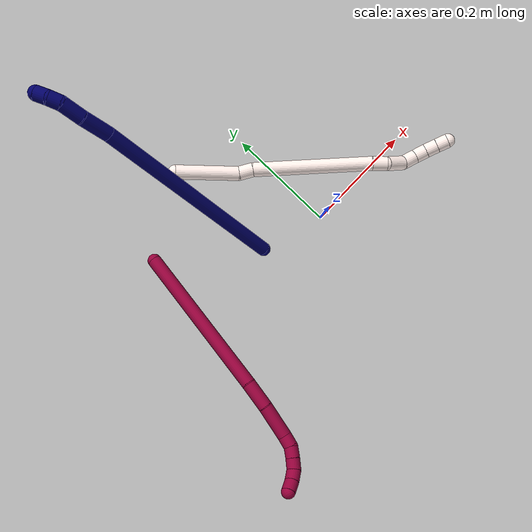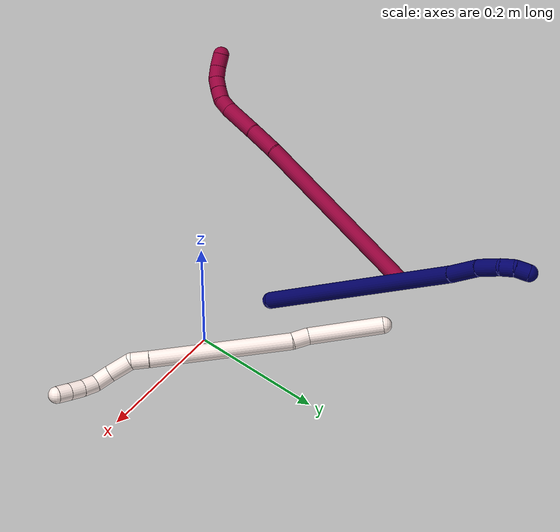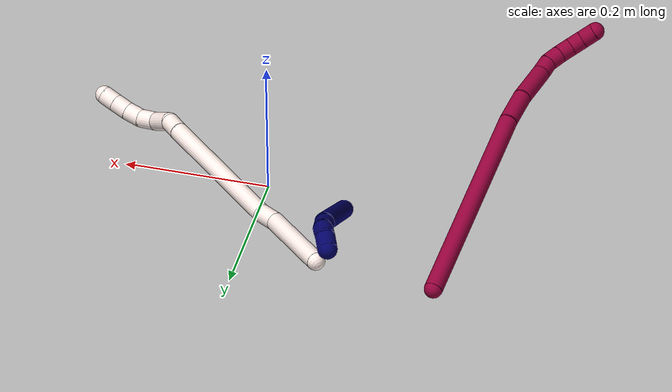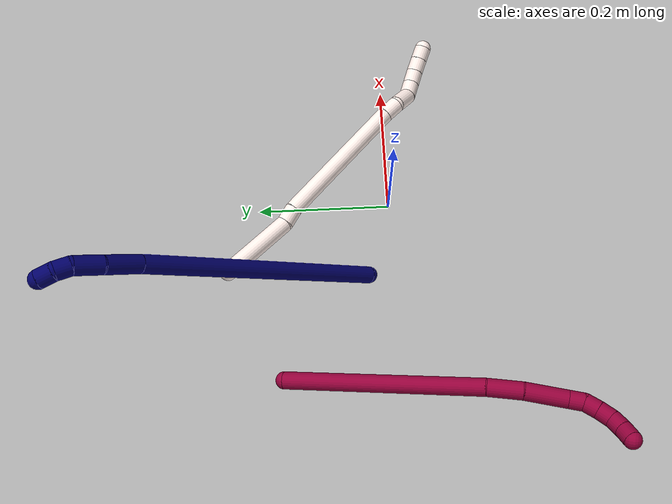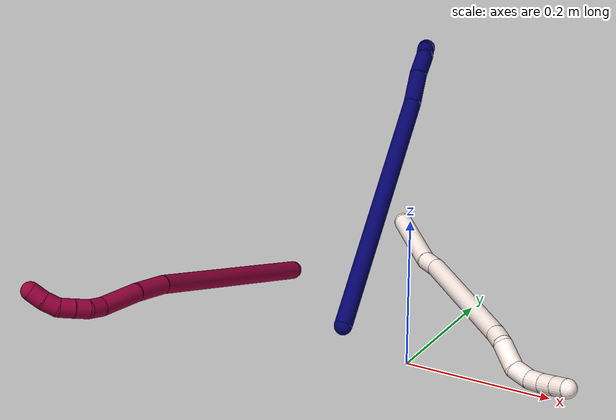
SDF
<sdf version="1.7">
 <world name="default">
  <model name="7">
   <static>0</static>
   <link name="7">
    <collision name="collision-cylinder-e_1_1_4">
     <pose>-0.002955 0.010544 0.184925 -0.056954 -0.015952 0.000454</pose>
     <geometry><cylinder><radius>0.0125</radius><length>0.370498</length></cylinder></geometry>
     <surface>
      <friction><ode><mu>1.16</mu><mu2>1.16</mu2><slip1>0</slip1><slip2>0</slip2></ode></friction>
      <contact><ode><kp>1e+06</kp><kd>1</kd><max_vel>0</max_vel><min_depth>0.001</min_depth></ode></contact>
     </surface>
    </collision>
    <visual name="visual-cylinder-e_1_1_4">
     <pose>-0.002955 0.010544 0.184925 -0.056954 -0.015952 0.000454</pose>
     <geometry><cylinder><radius>0.0125</radius><length>0.370498</length></cylinder></geometry>
     <material><ambient>0.003922 0 0.403922 1</ambient></material>
    </visual>
    <collision name="collision-cylinder-e_2_4_5">
     <pose>-0.008182 0.021612 0.394819 -0.021027 -0.090726 0.000955</pose>
     <geometry><cylinder><radius>0.0125</radius><length>0.050157</length></cylinder></geometry>
     <surface>
      <friction><ode><mu>1.16</mu><mu2>1.16</mu2><slip1>0</slip1><slip2>0</slip2></ode></friction>
      <contact><ode><kp>1e+06</kp><kd>1</kd><max_vel>0</max_vel><min_depth>0.001</min_depth></ode></contact>
     </surface>
    </collision>
    <visual name="visual-cylinder-e_2_4_5">
     <pose>-0.008182 0.021612 0.394819 -0.021027 -0.090726 0.000955</pose>
     <geometry><cylinder><radius>0.0125</radius><length>0.050157</length></cylinder></geometry>
     <material><ambient>0.003922 0 0.403922 1</ambient></material>
    </visual>
    <collision name="collision-cylinder-e_3_5_6">
     <pose>-0.011589 0.025587 0.438377 -0.18352 -0.059959 0.005519</pose>
     <geometry><cylinder><radius>0.0125</radius><length>0.037878</length></cylinder></geometry>
     <surface>
      <friction><ode><mu>1.16</mu><mu2>1.16</mu2><slip1>0</slip1><slip2>0</slip2></ode></friction>
      <contact><ode><kp>1e+06</kp><kd>1</kd><max_vel>0</max_vel><min_depth>0.001</min_depth></ode></contact>
     </surface>
    </collision>
    <visual name="visual-cylinder-e_3_5_6">
     <pose>-0.011589 0.025587 0.438377 -0.18352 -0.059959 0.005519</pose>
     <geometry><cylinder><radius>0.0125</radius><length>0.037878</length></cylinder></geometry>
     <material><ambient>0.003922 0 0.403922 1</ambient></material>
    </visual>
    <collision name="collision-cylinder-e_4_6_7">
     <pose>-0.015932 0.03333 0.465845 -0.450198 -0.314431 0.072565</pose>
     <geometry><cylinder><radius>0.0125</radius><length>0.020746</length></cylinder></geometry>
     <surface>
      <friction><ode><mu>1.16</mu><mu2>1.16</mu2><slip1>0</slip1><slip2>0</slip2></ode></friction>
      <contact><ode><kp>1e+06</kp><kd>1</kd><max_vel>0</max_vel><min_depth>0.001</min_depth></ode></contact>
     </surface>
    </collision>
    <visual name="visual-cylinder-e_4_6_7">
     <pose>-0.015932 0.03333 0.465845 -0.450198 -0.314431 0.072565</pose>
     <geometry><cylinder><radius>0.0125</radius><length>0.020746</length></cylinder></geometry>
     <material><ambient>0.003922 0 0.403922 1</ambient></material>
    </visual>
    <collision name="collision-cylinder-e_5_7_2">
     <pose>-0.022919 0.044871 0.481092 -0.850219 -0.373306 0.170577</pose>
     <geometry><cylinder><radius>0.0125</radius><length>0.020722</length></cylinder></geometry>
     <surface>
      <friction><ode><mu>1.16</mu><mu2>1.16</mu2><slip1>0</slip1><slip2>0</slip2></ode></friction>
      <contact><ode><kp>1e+06</kp><kd>1</kd><max_vel>0</max_vel><min_depth>0.001</min_depth></ode></contact>
     </surface>
    </collision>
    <visual name="visual-cylinder-e_5_7_2">
     <pose>-0.022919 0.044871 0.481092 -0.850219 -0.373306 0.170577</pose>
     <geometry><cylinder><radius>0.0125</radius><length>0.020722</length></cylinder></geometry>
     <material><ambient>0.003922 0 0.403922 1</ambient></material>
    </visual>
    <collision name="collision-sphere-2">
     <pose>-0.026697 0.052121 0.487458 0 -0 0</pose>
     <geometry><sphere><radius>0.0125</radius></sphere></geometry>
     <surface>
      <friction><ode><mu>1.16</mu><mu2>1.16</mu2><slip1>0</slip1><slip2>0</slip2></ode></friction>
      <contact><ode><kp>1e+06</kp><kd>1</kd><max_vel>0</max_vel><min_depth>0.001</min_depth></ode></contact>
     </surface>
    </collision>
    <visual name="visual-sphere-2">
     <pose>-0.026697 0.052121 0.487458 0 -0 0</pose>
     <geometry><sphere><radius>0.0125</radius></sphere></geometry>
     <material><ambient>0.003922 0 0.403922 1</ambient></material>
    </visual>
    <collision name="collision-sphere-7">
     <pose>-0.01914 0.037622 0.474727 0 -0 0</pose>
     <geometry><sphere><radius>0.0125</radius></sphere></geometry>
     <surface>
      <friction><ode><mu>1.16</mu><mu2>1.16</mu2><slip1>0</slip1><slip2>0</slip2></ode></friction>
      <contact><ode><kp>1e+06</kp><kd>1</kd><max_vel>0</max_vel><min_depth>0.001</min_depth></ode></contact>
     </surface>
    </collision>
    <visual name="visual-sphere-7">
     <pose>-0.01914 0.037622 0.474727 0 -0 0</pose>
     <geometry><sphere><radius>0.0125</radius></sphere></geometry>
     <material><ambient>0.003922 0 0.403922 1</ambient></material>
    </visual>
    <collision name="collision-sphere-6">
     <pose>-0.012724 0.029037 0.456964 0 -0 0</pose>
     <geometry><sphere><radius>0.0125</radius></sphere></geometry>
     <surface>
      <friction><ode><mu>1.16</mu><mu2>1.16</mu2><slip1>0</slip1><slip2>0</slip2></ode></friction>
      <contact><ode><kp>1e+06</kp><kd>1</kd><max_vel>0</max_vel><min_depth>0.001</min_depth></ode></contact>
     </surface>
    </collision>
    <visual name="visual-sphere-6">
     <pose>-0.012724 0.029037 0.456964 0 -0 0</pose>
     <geometry><sphere><radius>0.0125</radius></sphere></geometry>
     <material><ambient>0.003922 0 0.403922 1</ambient></material>
    </visual>
    <collision name="collision-sphere-5">
     <pose>-0.010454 0.022137 0.419789 0 -0 0</pose>
     <geometry><sphere><radius>0.0125</radius></sphere></geometry>
     <surface>
      <friction><ode><mu>1.16</mu><mu2>1.16</mu2><slip1>0</slip1><slip2>0</slip2></ode></friction>
      <contact><ode><kp>1e+06</kp><kd>1</kd><max_vel>0</max_vel><min_depth>0.001</min_depth></ode></contact>
     </surface>
    </collision>
    <visual name="visual-sphere-5">
     <pose>-0.010454 0.022137 0.419789 0 -0 0</pose>
     <geometry><sphere><radius>0.0125</radius></sphere></geometry>
     <material><ambient>0.003922 0 0.403922 1</ambient></material>
    </visual>
    <collision name="collision-sphere-1">
     <geometry><sphere><radius>0.0125</radius></sphere></geometry>
     <surface>
      <friction><ode><mu>1.16</mu><mu2>1.16</mu2><slip1>0</slip1><slip2>0</slip2></ode></friction>
      <contact><ode><kp>1e+06</kp><kd>1</kd><max_vel>0</max_vel><min_depth>0.001</min_depth></ode></contact>
     </surface>
    </collision>
    <visual name="visual-sphere-1">
     <geometry><sphere><radius>0.0125</radius></sphere></geometry>
     <material><ambient>0.003922 0 0.403922 1</ambient></material>
    </visual>
    <collision name="collision-sphere-4">
     <pose>-0.00591 0.021087 0.36985 0 -0 0</pose>
     <geometry><sphere><radius>0.0125</radius></sphere></geometry>
     <surface>
      <friction><ode><mu>1.16</mu><mu2>1.16</mu2><slip1>0</slip1><slip2>0</slip2></ode></friction>
      <contact><ode><kp>1e+06</kp><kd>1</kd><max_vel>0</max_vel><min_depth>0.001</min_depth></ode></contact>
     </surface>
    </collision>
    <visual name="visual-sphere-4">
     <pose>-0.00591 0.021087 0.36985 0 -0 0</pose>
     <geometry><sphere><radius>0.0125</radius></sphere></geometry>
     <material><ambient>0.003922 0 0.403922 1</ambient></material>
    </visual>
    <inertial>
     <pose>-0.005499 0.015162 0.249111 0 -0 0</pose>
     <mass>0.5</mass>
     <inertia>
      <ixx>0.004274</ixx>
      <ixy>0</ixy>
      <ixz>0</ixz>
      <iyy>0.004273</iyy>
      <iyz>0</iyz>
      <izz>-0.000137</izz>
     </inertia>
    </inertial>
   </link>
   <pose>-0.114573 0.035861 0.0125 -0.853641 -0.144994 0.031178</pose>
  </model>
  <model name="8">
   <static>0</static>
   <link name="8">
    <collision name="collision-cylinder-e_1_1_4">
     <pose>-0.000844 -0.017298 0.143311 0.12012 -0.005847 -0.000352</pose>
     <geometry><cylinder><radius>0.0125</radius><length>0.288706</length></cylinder></geometry>
     <surface>
      <friction><ode><mu>1.16</mu><mu2>1.16</mu2><slip1>0</slip1><slip2>0</slip2></ode></friction>
      <contact><ode><kp>1e+06</kp><kd>1</kd><max_vel>0</max_vel><min_depth>0.001</min_depth></ode></contact>
     </surface>
    </collision>
    <visual name="visual-cylinder-e_1_1_4">
     <pose>-0.000844 -0.017298 0.143311 0.12012 -0.005847 -0.000352</pose>
     <geometry><cylinder><radius>0.0125</radius><length>0.288706</length></cylinder></geometry>
     <material><ambient>0.584314 0 0.227451 1</ambient></material>
    </visual>
    <collision name="collision-cylinder-e_2_4_5">
     <pose>-0.005528 -0.037573 0.310629 0.123373 -0.157406 -0.009742</pose>
     <geometry><cylinder><radius>0.0125</radius><length>0.048988</length></cylinder></geometry>
     <surface>
      <friction><ode><mu>1.16</mu><mu2>1.16</mu2><slip1>0</slip1><slip2>0</slip2></ode></friction>
      <contact><ode><kp>1e+06</kp><kd>1</kd><max_vel>0</max_vel><min_depth>0.001</min_depth></ode></contact>
     </surface>
    </collision>
    <visual name="visual-cylinder-e_2_4_5">
     <pose>-0.005528 -0.037573 0.310629 0.123373 -0.157406 -0.009742</pose>
     <geometry><cylinder><radius>0.0125</radius><length>0.048988</length></cylinder></geometry>
     <material><ambient>0.584314 0 0.227451 1</ambient></material>
    </visual>
    <collision name="collision-cylinder-e_3_5_6">
     <pose>-0.017985 -0.04333 0.363324 0.096622 -0.290524 -0.014146</pose>
     <geometry><cylinder><radius>0.0125</radius><length>0.060165</length></cylinder></geometry>
     <surface>
      <friction><ode><mu>1.16</mu><mu2>1.16</mu2><slip1>0</slip1><slip2>0</slip2></ode></friction>
      <contact><ode><kp>1e+06</kp><kd>1</kd><max_vel>0</max_vel><min_depth>0.001</min_depth></ode></contact>
     </surface>
    </collision>
    <visual name="visual-cylinder-e_3_5_6">
     <pose>-0.017985 -0.04333 0.363324 0.096622 -0.290524 -0.014146</pose>
     <geometry><cylinder><radius>0.0125</radius><length>0.060165</length></cylinder></geometry>
     <material><ambient>0.584314 0 0.227451 1</ambient></material>
    </visual>
    <collision name="collision-cylinder-e_4_6_7">
     <pose>-0.02799 -0.046304 0.402618 0.018265 -0.130115 -0.00119</pose>
     <geometry><cylinder><radius>0.0125</radius><length>0.021397</length></cylinder></geometry>
     <surface>
      <friction><ode><mu>1.16</mu><mu2>1.16</mu2><slip1>0</slip1><slip2>0</slip2></ode></friction>
      <contact><ode><kp>1e+06</kp><kd>1</kd><max_vel>0</max_vel><min_depth>0.001</min_depth></ode></contact>
     </surface>
    </collision>
    <visual name="visual-cylinder-e_4_6_7">
     <pose>-0.02799 -0.046304 0.402618 0.018265 -0.130115 -0.00119</pose>
     <geometry><cylinder><radius>0.0125</radius><length>0.021397</length></cylinder></geometry>
     <material><ambient>0.584314 0 0.227451 1</ambient></material>
    </visual>
    <collision name="collision-cylinder-e_5_7_8">
     <pose>-0.030705 -0.043012 0.42251 -0.359129 -0.132948 0.024167</pose>
     <geometry><cylinder><radius>0.0125</radius><length>0.020015</length></cylinder></geometry>
     <surface>
      <friction><ode><mu>1.16</mu><mu2>1.16</mu2><slip1>0</slip1><slip2>0</slip2></ode></friction>
      <contact><ode><kp>1e+06</kp><kd>1</kd><max_vel>0</max_vel><min_depth>0.001</min_depth></ode></contact>
     </surface>
    </collision>
    <visual name="visual-cylinder-e_5_7_8">
     <pose>-0.030705 -0.043012 0.42251 -0.359129 -0.132948 0.024167</pose>
     <geometry><cylinder><radius>0.0125</radius><length>0.020015</length></cylinder></geometry>
     <material><ambient>0.584314 0 0.227451 1</ambient></material>
    </visual>
    <collision name="collision-cylinder-e_6_8_9">
     <pose>-0.033544 -0.035328 0.440911 -0.431633 -0.149603 0.032856</pose>
     <geometry><cylinder><radius>0.0125</radius><length>0.020296</length></cylinder></geometry>
     <surface>
      <friction><ode><mu>1.16</mu><mu2>1.16</mu2><slip1>0</slip1><slip2>0</slip2></ode></friction>
      <contact><ode><kp>1e+06</kp><kd>1</kd><max_vel>0</max_vel><min_depth>0.001</min_depth></ode></contact>
     </surface>
    </collision>
    <visual name="visual-cylinder-e_6_8_9">
     <pose>-0.033544 -0.035328 0.440911 -0.431633 -0.149603 0.032856</pose>
     <geometry><cylinder><radius>0.0125</radius><length>0.020296</length></cylinder></geometry>
     <material><ambient>0.584314 0 0.227451 1</ambient></material>
    </visual>
    <collision name="collision-cylinder-e_7_9_10">
     <pose>-0.033671 -0.024514 0.457413 -0.730311 0.138807 -0.053139</pose>
     <geometry><cylinder><radius>0.0125</radius><length>0.020028</length></cylinder></geometry>
     <surface>
      <friction><ode><mu>1.16</mu><mu2>1.16</mu2><slip1>0</slip1><slip2>0</slip2></ode></friction>
      <contact><ode><kp>1e+06</kp><kd>1</kd><max_vel>0</max_vel><min_depth>0.001</min_depth></ode></contact>
     </surface>
    </collision>
    <visual name="visual-cylinder-e_7_9_10">
     <pose>-0.033671 -0.024514 0.457413 -0.730311 0.138807 -0.053139</pose>
     <geometry><cylinder><radius>0.0125</radius><length>0.020028</length></cylinder></geometry>
     <material><ambient>0.584314 0 0.227451 1</ambient></material>
    </visual>
    <collision name="collision-cylinder-e_8_10_2">
     <pose>-0.029542 -0.010412 0.471168 -0.865989 0.272209 -0.126443</pose>
     <geometry><cylinder><radius>0.0125</radius><length>0.020404</length></cylinder></geometry>
     <surface>
      <friction><ode><mu>1.16</mu><mu2>1.16</mu2><slip1>0</slip1><slip2>0</slip2></ode></friction>
      <contact><ode><kp>1e+06</kp><kd>1</kd><max_vel>0</max_vel><min_depth>0.001</min_depth></ode></contact>
     </surface>
    </collision>
    <visual name="visual-cylinder-e_8_10_2">
     <pose>-0.029542 -0.010412 0.471168 -0.865989 0.272209 -0.126443</pose>
     <geometry><cylinder><radius>0.0125</radius><length>0.020404</length></cylinder></geometry>
     <material><ambient>0.584314 0 0.227451 1</ambient></material>
    </visual>
    <collision name="collision-sphere-2">
     <pose>-0.026799 -0.002927 0.477535 0 -0 0</pose>
     <geometry><sphere><radius>0.0125</radius></sphere></geometry>
     <surface>
      <friction><ode><mu>1.16</mu><mu2>1.16</mu2><slip1>0</slip1><slip2>0</slip2></ode></friction>
      <contact><ode><kp>1e+06</kp><kd>1</kd><max_vel>0</max_vel><min_depth>0.001</min_depth></ode></contact>
     </surface>
    </collision>
    <visual name="visual-sphere-2">
     <pose>-0.026799 -0.002927 0.477535 0 -0 0</pose>
     <geometry><sphere><radius>0.0125</radius></sphere></geometry>
     <material><ambient>0.584314 0 0.227451 1</ambient></material>
    </visual>
    <collision name="collision-sphere-10">
     <pose>-0.032285 -0.017898 0.464802 0 -0 0</pose>
     <geometry><sphere><radius>0.0125</radius></sphere></geometry>
     <surface>
      <friction><ode><mu>1.16</mu><mu2>1.16</mu2><slip1>0</slip1><slip2>0</slip2></ode></friction>
      <contact><ode><kp>1e+06</kp><kd>1</kd><max_vel>0</max_vel><min_depth>0.001</min_depth></ode></contact>
     </surface>
    </collision>
    <visual name="visual-sphere-10">
     <pose>-0.032285 -0.017898 0.464802 0 -0 0</pose>
     <geometry><sphere><radius>0.0125</radius></sphere></geometry>
     <material><ambient>0.584314 0 0.227451 1</ambient></material>
    </visual>
    <collision name="collision-sphere-9">
     <pose>-0.035056 -0.03113 0.450025 0 -0 0</pose>
     <geometry><sphere><radius>0.0125</radius></sphere></geometry>
     <surface>
      <friction><ode><mu>1.16</mu><mu2>1.16</mu2><slip1>0</slip1><slip2>0</slip2></ode></friction>
      <contact><ode><kp>1e+06</kp><kd>1</kd><max_vel>0</max_vel><min_depth>0.001</min_depth></ode></contact>
     </surface>
    </collision>
    <visual name="visual-sphere-9">
     <pose>-0.035056 -0.03113 0.450025 0 -0 0</pose>
     <geometry><sphere><radius>0.0125</radius></sphere></geometry>
     <material><ambient>0.584314 0 0.227451 1</ambient></material>
    </visual>
    <collision name="collision-sphere-4">
     <pose>-0.001688 -0.034596 0.286621 0 -0 0</pose>
     <geometry><sphere><radius>0.0125</radius></sphere></geometry>
     <surface>
      <friction><ode><mu>1.16</mu><mu2>1.16</mu2><slip1>0</slip1><slip2>0</slip2></ode></friction>
      <contact><ode><kp>1e+06</kp><kd>1</kd><max_vel>0</max_vel><min_depth>0.001</min_depth></ode></contact>
     </surface>
    </collision>
    <visual name="visual-sphere-4">
     <pose>-0.001688 -0.034596 0.286621 0 -0 0</pose>
     <geometry><sphere><radius>0.0125</radius></sphere></geometry>
     <material><ambient>0.584314 0 0.227451 1</ambient></material>
    </visual>
    <collision name="collision-sphere-1">
     <geometry><sphere><radius>0.0125</radius></sphere></geometry>
     <surface>
      <friction><ode><mu>1.16</mu><mu2>1.16</mu2><slip1>0</slip1><slip2>0</slip2></ode></friction>
      <contact><ode><kp>1e+06</kp><kd>1</kd><max_vel>0</max_vel><min_depth>0.001</min_depth></ode></contact>
     </surface>
    </collision>
    <visual name="visual-sphere-1">
     <geometry><sphere><radius>0.0125</radius></sphere></geometry>
     <material><ambient>0.584314 0 0.227451 1</ambient></material>
    </visual>
    <collision name="collision-sphere-8">
     <pose>-0.032031 -0.039526 0.431796 0 -0 0</pose>
     <geometry><sphere><radius>0.0125</radius></sphere></geometry>
     <surface>
      <friction><ode><mu>1.16</mu><mu2>1.16</mu2><slip1>0</slip1><slip2>0</slip2></ode></friction>
      <contact><ode><kp>1e+06</kp><kd>1</kd><max_vel>0</max_vel><min_depth>0.001</min_depth></ode></contact>
     </surface>
    </collision>
    <visual name="visual-sphere-8">
     <pose>-0.032031 -0.039526 0.431796 0 -0 0</pose>
     <geometry><sphere><radius>0.0125</radius></sphere></geometry>
     <material><ambient>0.584314 0 0.227451 1</ambient></material>
    </visual>
    <collision name="collision-sphere-5">
     <pose>-0.009367 -0.04055 0.334636 0 -0 0</pose>
     <geometry><sphere><radius>0.0125</radius></sphere></geometry>
     <surface>
      <friction><ode><mu>1.16</mu><mu2>1.16</mu2><slip1>0</slip1><slip2>0</slip2></ode></friction>
      <contact><ode><kp>1e+06</kp><kd>1</kd><max_vel>0</max_vel><min_depth>0.001</min_depth></ode></contact>
     </surface>
    </collision>
    <visual name="visual-sphere-5">
     <pose>-0.009367 -0.04055 0.334636 0 -0 0</pose>
     <geometry><sphere><radius>0.0125</radius></sphere></geometry>
     <material><ambient>0.584314 0 0.227451 1</ambient></material>
    </visual>
    <collision name="collision-sphere-6">
     <pose>-0.026602 -0.046111 0.392011 0 -0 0</pose>
     <geometry><sphere><radius>0.0125</radius></sphere></geometry>
     <surface>
      <friction><ode><mu>1.16</mu><mu2>1.16</mu2><slip1>0</slip1><slip2>0</slip2></ode></friction>
      <contact><ode><kp>1e+06</kp><kd>1</kd><max_vel>0</max_vel><min_depth>0.001</min_depth></ode></contact>
     </surface>
    </collision>
    <visual name="visual-sphere-6">
     <pose>-0.026602 -0.046111 0.392011 0 -0 0</pose>
     <geometry><sphere><radius>0.0125</radius></sphere></geometry>
     <material><ambient>0.584314 0 0.227451 1</ambient></material>
    </visual>
    <collision name="collision-sphere-7">
     <pose>-0.029378 -0.046498 0.413224 0 -0 0</pose>
     <geometry><sphere><radius>0.0125</radius></sphere></geometry>
     <surface>
      <friction><ode><mu>1.16</mu><mu2>1.16</mu2><slip1>0</slip1><slip2>0</slip2></ode></friction>
      <contact><ode><kp>1e+06</kp><kd>1</kd><max_vel>0</max_vel><min_depth>0.001</min_depth></ode></contact>
     </surface>
    </collision>
    <visual name="visual-sphere-7">
     <pose>-0.029378 -0.046498 0.413224 0 -0 0</pose>
     <geometry><sphere><radius>0.0125</radius></sphere></geometry>
     <material><ambient>0.584314 0 0.227451 1</ambient></material>
    </visual>
    <inertial>
     <pose>-0.009536 -0.025427 0.246492 0 -0 0</pose>
     <mass>0.5</mass>
     <inertia>
      <ixx>0.002052</ixx>
      <ixy>0</ixy>
      <ixz>0</ixz>
      <iyy>0.002039</iyy>
      <iyz>0</iyz>
      <izz>0.000299</izz>
     </inertia>
    </inertial>
   </link>
   <pose>-0.26811 0.165623 0.012387 0.620819 -1.2032 0.661373</pose>
  </model>
  <model name="11">
   <static>0</static>
   <link name="11">
    <collision name="collision-cylinder-e_1_1_4">
     <pose>-0.004254 -0.012412 0.053971 0.226054 -0.076667 -0.008707</pose>
     <geometry><cylinder><radius>0.0125</radius><length>0.111085</length></cylinder></geometry>
     <surface>
      <friction><ode><mu>1.16</mu><mu2>1.16</mu2><slip1>0</slip1><slip2>0</slip2></ode></friction>
      <contact><ode><kp>1e+06</kp><kd>1</kd><max_vel>0</max_vel><min_depth>0.001</min_depth></ode></contact>
     </surface>
    </collision>
    <visual name="visual-cylinder-e_1_1_4">
     <pose>-0.004254 -0.012412 0.053971 0.226054 -0.076667 -0.008707</pose>
     <geometry><cylinder><radius>0.0125</radius><length>0.111085</length></cylinder></geometry>
     <material><ambient>1 0.933333 0.909804 1</ambient></material>
    </visual>
    <collision name="collision-cylinder-e_2_4_5">
     <pose>-0.005868 -0.02804 0.119968 0.261193 0.209008 0.027551</pose>
     <geometry><cylinder><radius>0.0125</radius><length>0.025452</length></cylinder></geometry>
     <surface>
      <friction><ode><mu>1.16</mu><mu2>1.16</mu2><slip1>0</slip1><slip2>0</slip2></ode></friction>
      <contact><ode><kp>1e+06</kp><kd>1</kd><max_vel>0</max_vel><min_depth>0.001</min_depth></ode></contact>
     </surface>
    </collision>
    <visual name="visual-cylinder-e_2_4_5">
     <pose>-0.005868 -0.02804 0.119968 0.261193 0.209008 0.027551</pose>
     <geometry><cylinder><radius>0.0125</radius><length>0.025452</length></cylinder></geometry>
     <material><ambient>1 0.933333 0.909804 1</ambient></material>
    </visual>
    <collision name="collision-cylinder-e_3_5_6">
     <pose>-0.000886 -0.047776 0.235944 0.15762 0.022242 0.001757</pose>
     <geometry><cylinder><radius>0.0125</radius><length>0.21056</length></cylinder></geometry>
     <surface>
      <friction><ode><mu>1.16</mu><mu2>1.16</mu2><slip1>0</slip1><slip2>0</slip2></ode></friction>
      <contact><ode><kp>1e+06</kp><kd>1</kd><max_vel>0</max_vel><min_depth>0.001</min_depth></ode></contact>
     </surface>
    </collision>
    <visual name="visual-cylinder-e_3_5_6">
     <pose>-0.000886 -0.047776 0.235944 0.15762 0.022242 0.001757</pose>
     <geometry><cylinder><radius>0.0125</radius><length>0.21056</length></cylinder></geometry>
     <material><ambient>1 0.933333 0.909804 1</ambient></material>
    </visual>
    <collision name="collision-cylinder-e_4_6_7">
     <pose>0.000764 -0.066491 0.352769 0.168737 -0.052894 -0.004474</pose>
     <geometry><cylinder><radius>0.0125</radius><length>0.026159</length></cylinder></geometry>
     <surface>
      <friction><ode><mu>1.16</mu><mu2>1.16</mu2><slip1>0</slip1><slip2>0</slip2></ode></friction>
      <contact><ode><kp>1e+06</kp><kd>1</kd><max_vel>0</max_vel><min_depth>0.001</min_depth></ode></contact>
     </surface>
    </collision>
    <visual name="visual-cylinder-e_4_6_7">
     <pose>0.000764 -0.066491 0.352769 0.168737 -0.052894 -0.004474</pose>
     <geometry><cylinder><radius>0.0125</radius><length>0.026159</length></cylinder></geometry>
     <material><ambient>1 0.933333 0.909804 1</ambient></material>
    </visual>
    <collision name="collision-cylinder-e_5_7_8">
     <pose>-0.002275 -0.080271 0.380129 0.674719 -0.125876 -0.044205</pose>
     <geometry><cylinder><radius>0.0125</radius><length>0.037394</length></cylinder></geometry>
     <surface>
      <friction><ode><mu>1.16</mu><mu2>1.16</mu2><slip1>0</slip1><slip2>0</slip2></ode></friction>
      <contact><ode><kp>1e+06</kp><kd>1</kd><max_vel>0</max_vel><min_depth>0.001</min_depth></ode></contact>
     </surface>
    </collision>
    <visual name="visual-cylinder-e_5_7_8">
     <pose>-0.002275 -0.080271 0.380129 0.674719 -0.125876 -0.044205</pose>
     <geometry><cylinder><radius>0.0125</radius><length>0.037394</length></cylinder></geometry>
     <material><ambient>1 0.933333 0.909804 1</ambient></material>
    </visual>
    <collision name="collision-cylinder-e_6_8_9">
     <pose>-0.000568 -0.098016 0.405052 0.532952 0.322829 0.088837</pose>
     <geometry><cylinder><radius>0.0125</radius><length>0.025558</length></cylinder></geometry>
     <surface>
      <friction><ode><mu>1.16</mu><mu2>1.16</mu2><slip1>0</slip1><slip2>0</slip2></ode></friction>
      <contact><ode><kp>1e+06</kp><kd>1</kd><max_vel>0</max_vel><min_depth>0.001</min_depth></ode></contact>
     </surface>
    </collision>
    <visual name="visual-cylinder-e_6_8_9">
     <pose>-0.000568 -0.098016 0.405052 0.532952 0.322829 0.088837</pose>
     <geometry><cylinder><radius>0.0125</radius><length>0.025558</length></cylinder></geometry>
     <material><ambient>1 0.933333 0.909804 1</ambient></material>
    </visual>
    <collision name="collision-cylinder-e_7_9_10">
     <pose>0.008356 -0.106159 0.425248 0.200783 0.454839 0.046614</pose>
     <geometry><cylinder><radius>0.0125</radius><length>0.022171</length></cylinder></geometry>
     <surface>
      <friction><ode><mu>1.16</mu><mu2>1.16</mu2><slip1>0</slip1><slip2>0</slip2></ode></friction>
      <contact><ode><kp>1e+06</kp><kd>1</kd><max_vel>0</max_vel><min_depth>0.001</min_depth></ode></contact>
     </surface>
    </collision>
    <visual name="visual-cylinder-e_7_9_10">
     <pose>0.008356 -0.106159 0.425248 0.200783 0.454839 0.046614</pose>
     <geometry><cylinder><radius>0.0125</radius><length>0.022171</length></cylinder></geometry>
     <material><ambient>1 0.933333 0.909804 1</ambient></material>
    </visual>
    <collision name="collision-cylinder-e_8_10_11">
     <pose>0.017915 -0.108929 0.444581 0.081663 0.454047 0.018874</pose>
     <geometry><cylinder><radius>0.0125</radius><length>0.02138</length></cylinder></geometry>
     <surface>
      <friction><ode><mu>1.16</mu><mu2>1.16</mu2><slip1>0</slip1><slip2>0</slip2></ode></friction>
      <contact><ode><kp>1e+06</kp><kd>1</kd><max_vel>0</max_vel><min_depth>0.001</min_depth></ode></contact>
     </surface>
    </collision>
    <visual name="visual-cylinder-e_8_10_11">
     <pose>0.017915 -0.108929 0.444581 0.081663 0.454047 0.018874</pose>
     <geometry><cylinder><radius>0.0125</radius><length>0.02138</length></cylinder></geometry>
     <material><ambient>1 0.933333 0.909804 1</ambient></material>
    </visual>
    <collision name="collision-cylinder-e_9_11_2">
     <pose>0.026979 -0.110339 0.463261 0.068701 0.446996 0.015621</pose>
     <geometry><cylinder><radius>0.0125</radius><length>0.020241</length></cylinder></geometry>
     <surface>
      <friction><ode><mu>1.16</mu><mu2>1.16</mu2><slip1>0</slip1><slip2>0</slip2></ode></friction>
      <contact><ode><kp>1e+06</kp><kd>1</kd><max_vel>0</max_vel><min_depth>0.001</min_depth></ode></contact>
     </surface>
    </collision>
    <visual name="visual-cylinder-e_9_11_2">
     <pose>0.026979 -0.110339 0.463261 0.068701 0.446996 0.015621</pose>
     <geometry><cylinder><radius>0.0125</radius><length>0.020241</length></cylinder></geometry>
     <material><ambient>1 0.933333 0.909804 1</ambient></material>
    </visual>
    <collision name="collision-sphere-2">
     <pose>0.031353 -0.110966 0.472366 0 -0 0</pose>
     <geometry><sphere><radius>0.0125</radius></sphere></geometry>
     <surface>
      <friction><ode><mu>1.16</mu><mu2>1.16</mu2><slip1>0</slip1><slip2>0</slip2></ode></friction>
      <contact><ode><kp>1e+06</kp><kd>1</kd><max_vel>0</max_vel><min_depth>0.001</min_depth></ode></contact>
     </surface>
    </collision>
    <visual name="visual-sphere-2">
     <pose>0.031353 -0.110966 0.472366 0 -0 0</pose>
     <geometry><sphere><radius>0.0125</radius></sphere></geometry>
     <material><ambient>1 0.933333 0.909804 1</ambient></material>
    </visual>
    <collision name="collision-sphere-11">
     <pose>0.022604 -0.109713 0.454156 0 -0 0</pose>
     <geometry><sphere><radius>0.0125</radius></sphere></geometry>
     <surface>
      <friction><ode><mu>1.16</mu><mu2>1.16</mu2><slip1>0</slip1><slip2>0</slip2></ode></friction>
      <contact><ode><kp>1e+06</kp><kd>1</kd><max_vel>0</max_vel><min_depth>0.001</min_depth></ode></contact>
     </surface>
    </collision>
    <visual name="visual-sphere-11">
     <pose>0.022604 -0.109713 0.454156 0 -0 0</pose>
     <geometry><sphere><radius>0.0125</radius></sphere></geometry>
     <material><ambient>1 0.933333 0.909804 1</ambient></material>
    </visual>
    <collision name="collision-sphere-10">
     <pose>0.013226 -0.108145 0.435006 0 -0 0</pose>
     <geometry><sphere><radius>0.0125</radius></sphere></geometry>
     <surface>
      <friction><ode><mu>1.16</mu><mu2>1.16</mu2><slip1>0</slip1><slip2>0</slip2></ode></friction>
      <contact><ode><kp>1e+06</kp><kd>1</kd><max_vel>0</max_vel><min_depth>0.001</min_depth></ode></contact>
     </surface>
    </collision>
    <visual name="visual-sphere-10">
     <pose>0.013226 -0.108145 0.435006 0 -0 0</pose>
     <geometry><sphere><radius>0.0125</radius></sphere></geometry>
     <material><ambient>1 0.933333 0.909804 1</ambient></material>
    </visual>
    <collision name="collision-sphere-9">
     <pose>0.003486 -0.104173 0.41549 0 -0 0</pose>
     <geometry><sphere><radius>0.0125</radius></sphere></geometry>
     <surface>
      <friction><ode><mu>1.16</mu><mu2>1.16</mu2><slip1>0</slip1><slip2>0</slip2></ode></friction>
      <contact><ode><kp>1e+06</kp><kd>1</kd><max_vel>0</max_vel><min_depth>0.001</min_depth></ode></contact>
     </surface>
    </collision>
    <visual name="visual-sphere-9">
     <pose>0.003486 -0.104173 0.41549 0 -0 0</pose>
     <geometry><sphere><radius>0.0125</radius></sphere></geometry>
     <material><ambient>1 0.933333 0.909804 1</ambient></material>
    </visual>
    <collision name="collision-sphere-4">
     <pose>-0.008508 -0.024825 0.107941 0 -0 0</pose>
     <geometry><sphere><radius>0.0125</radius></sphere></geometry>
     <surface>
      <friction><ode><mu>1.16</mu><mu2>1.16</mu2><slip1>0</slip1><slip2>0</slip2></ode></friction>
      <contact><ode><kp>1e+06</kp><kd>1</kd><max_vel>0</max_vel><min_depth>0.001</min_depth></ode></contact>
     </surface>
    </collision>
    <visual name="visual-sphere-4">
     <pose>-0.008508 -0.024825 0.107941 0 -0 0</pose>
     <geometry><sphere><radius>0.0125</radius></sphere></geometry>
     <material><ambient>1 0.933333 0.909804 1</ambient></material>
    </visual>
    <collision name="collision-sphere-1">
     <geometry><sphere><radius>0.0125</radius></sphere></geometry>
     <surface>
      <friction><ode><mu>1.16</mu><mu2>1.16</mu2><slip1>0</slip1><slip2>0</slip2></ode></friction>
      <contact><ode><kp>1e+06</kp><kd>1</kd><max_vel>0</max_vel><min_depth>0.001</min_depth></ode></contact>
     </surface>
    </collision>
    <visual name="visual-sphere-1">
     <geometry><sphere><radius>0.0125</radius></sphere></geometry>
     <material><ambient>1 0.933333 0.909804 1</ambient></material>
    </visual>
    <collision name="collision-sphere-8">
     <pose>-0.004622 -0.091859 0.394614 0 -0 0</pose>
     <geometry><sphere><radius>0.0125</radius></sphere></geometry>
     <surface>
      <friction><ode><mu>1.16</mu><mu2>1.16</mu2><slip1>0</slip1><slip2>0</slip2></ode></friction>
      <contact><ode><kp>1e+06</kp><kd>1</kd><max_vel>0</max_vel><min_depth>0.001</min_depth></ode></contact>
     </surface>
    </collision>
    <visual name="visual-sphere-8">
     <pose>-0.004622 -0.091859 0.394614 0 -0 0</pose>
     <geometry><sphere><radius>0.0125</radius></sphere></geometry>
     <material><ambient>1 0.933333 0.909804 1</ambient></material>
    </visual>
    <collision name="collision-sphere-5">
     <pose>-0.003227 -0.031254 0.131995 0 -0 0</pose>
     <geometry><sphere><radius>0.0125</radius></sphere></geometry>
     <surface>
      <friction><ode><mu>1.16</mu><mu2>1.16</mu2><slip1>0</slip1><slip2>0</slip2></ode></friction>
      <contact><ode><kp>1e+06</kp><kd>1</kd><max_vel>0</max_vel><min_depth>0.001</min_depth></ode></contact>
     </surface>
    </collision>
    <visual name="visual-sphere-5">
     <pose>-0.003227 -0.031254 0.131995 0 -0 0</pose>
     <geometry><sphere><radius>0.0125</radius></sphere></geometry>
     <material><ambient>1 0.933333 0.909804 1</ambient></material>
    </visual>
    <collision name="collision-sphere-6">
     <pose>0.001456 -0.064297 0.339893 0 -0 0</pose>
     <geometry><sphere><radius>0.0125</radius></sphere></geometry>
     <surface>
      <friction><ode><mu>1.16</mu><mu2>1.16</mu2><slip1>0</slip1><slip2>0</slip2></ode></friction>
      <contact><ode><kp>1e+06</kp><kd>1</kd><max_vel>0</max_vel><min_depth>0.001</min_depth></ode></contact>
     </surface>
    </collision>
    <visual name="visual-sphere-6">
     <pose>0.001456 -0.064297 0.339893 0 -0 0</pose>
     <geometry><sphere><radius>0.0125</radius></sphere></geometry>
     <material><ambient>1 0.933333 0.909804 1</ambient></material>
    </visual>
    <collision name="collision-sphere-7">
     <pose>7.3e-05 -0.068684 0.365645 0 -0 0</pose>
     <geometry><sphere><radius>0.0125</radius></sphere></geometry>
     <surface>
      <friction><ode><mu>1.16</mu><mu2>1.16</mu2><slip1>0</slip1><slip2>0</slip2></ode></friction>
      <contact><ode><kp>1e+06</kp><kd>1</kd><max_vel>0</max_vel><min_depth>0.001</min_depth></ode></contact>
     </surface>
    </collision>
    <visual name="visual-sphere-7">
     <pose>7.3e-05 -0.068684 0.365645 0 -0 0</pose>
     <geometry><sphere><radius>0.0125</radius></sphere></geometry>
     <material><ambient>1 0.933333 0.909804 1</ambient></material>
    </visual>
    <inertial>
     <pose>0.000453 -0.052628 0.241668 0 -0 0</pose>
     <mass>0.5</mass>
     <inertia><ixx>0.000924</ixx><ixy>0</ixy><ixz>0</ixz><iyy>0.0009</iyy><iyz>0</iyz><izz>0.000182</izz></inertia>
    </inertial>
   </link>
   <pose>-0.127311 0.236843 0.090484 1.44459 -0.434931 0.784843</pose>
  </model>
 </world>
</sdf>
